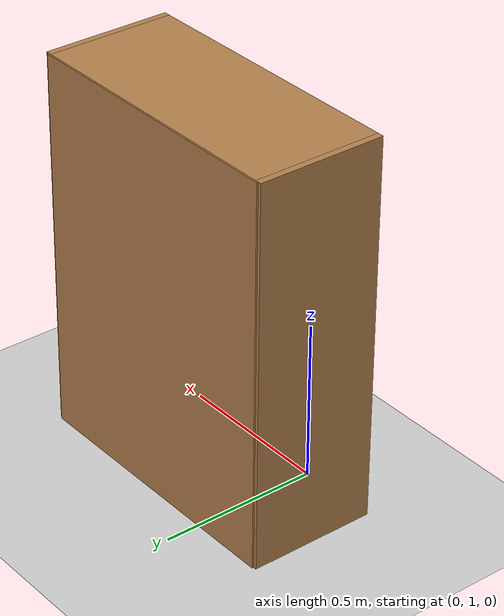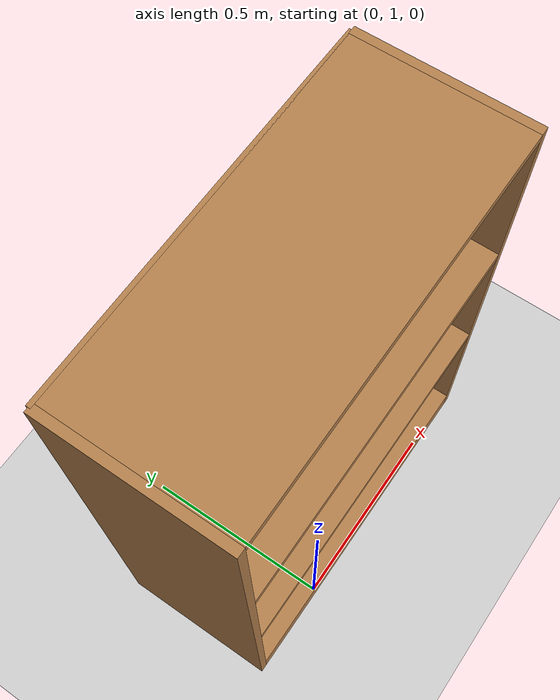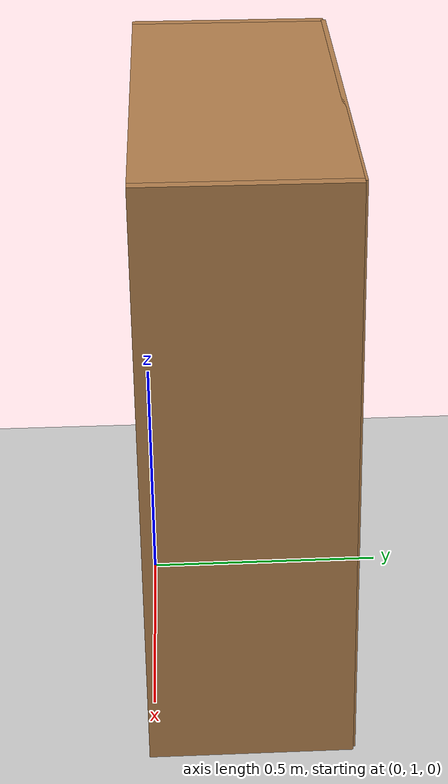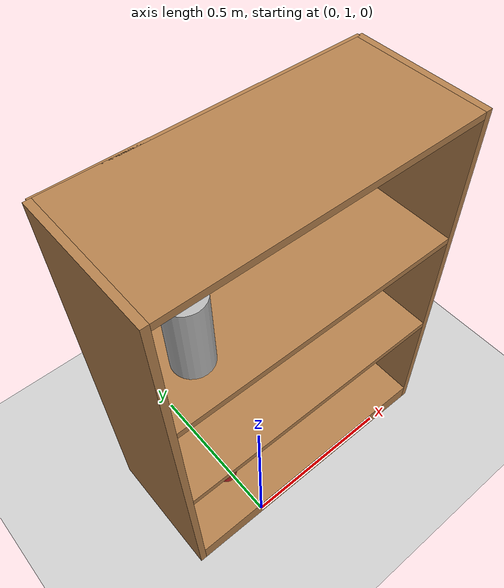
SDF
<sdf version="1.6">
 <world name="default">
  <light name="sun" type="directional">
   <pose>0 0 10 0 -0 0</pose>
   <diffuse>0.8 0.8 0.8 1</diffuse>
   <specular>0.1 0.1 0.1 1</specular>
   <attenuation>
    <range>1000</range>
    <constant>0.9</constant>
    <linear>0.01</linear>
    <quadratic>0.001</quadratic>
   </attenuation>
   <direction>-0.5 0.5 -1</direction>
  </light>
  <model name="ground_plane">
   <static>1</static>
   <link name="link">
    <collision name="collision">
     <geometry><plane><normal>0 0 1</normal><size>100 100</size></plane></geometry>
     <surface><friction><ode><mu>100</mu><mu2>50</mu2></ode></friction></surface>
    </collision>
    <visual name="visual">
     <cast_shadows>0</cast_shadows>
     <geometry><plane><normal>0 0 1</normal><size>100 100</size></plane></geometry>
     <material>
      <script><uri>file://media/materials/scripts/gazebo.material</uri><name>Gazebo/Grey</name></script>
     </material>
    </visual>
   </link>
  </model>
  <gravity>0 0 -9.8</gravity>
  <magnetic_field>6e-06 2.3e-05 -4.2e-05</magnetic_field>
  <atmosphere type="adiabatic"/>
  <physics name="default_physics" default="0" type="ode">
   <max_step_size>0.001</max_step_size>
   <real_time_factor>1</real_time_factor>
   <real_time_update_rate>1000</real_time_update_rate>
  </physics>
  <scene><ambient>0.4 0.4 0.4 1</ambient><background>0.7 0.7 0.7 1</background><shadows>1</shadows></scene>
  <spherical_coordinates>
   <surface_model>EARTH_WGS84</surface_model>
   <latitude_deg>0</latitude_deg>
   <longitude_deg>0</longitude_deg>
   <elevation>0</elevation>
   <heading_deg>0</heading_deg>
  </spherical_coordinates>
  <model name="bookshelf">
   <static>1</static>
   <link name="link">
    <inertial><mass>1</mass></inertial>
    <collision name="back">
     <pose>0 0.005 0.6 0 -0 0</pose>
     <geometry><box><size>0.9 0.01 1.2</size></box></geometry>
    </collision>
    <visual name="visual1">
     <pose>0 0.005 0.6 0 -0 0</pose>
     <geometry><box><size>0.9 0.01 1.2</size></box></geometry>
     <material>
      <script><uri>file://media/materials/scripts/gazebo.material</uri><name>Gazebo/Wood</name></script>
     </material>
    </visual>
    <collision name="left_side">
     <pose>0.45 -0.195 0.6 0 -0 0</pose>
     <geometry><box><size>0.02 0.4 1.2</size></box></geometry>
    </collision>
    <visual name="visual2">
     <pose>0.45 -0.195 0.6 0 -0 0</pose>
     <geometry><box><size>0.02 0.4 1.2</size></box></geometry>
     <material>
      <script><uri>file://media/materials/scripts/gazebo.material</uri><name>Gazebo/Wood</name></script>
     </material>
    </visual>
    <collision name="right_side">
     <pose>-0.45 -0.195 0.6 0 -0 0</pose>
     <geometry><box><size>0.02 0.4 1.2</size></box></geometry>
    </collision>
    <visual name="visual3">
     <pose>-0.45 -0.195 0.6 0 -0 0</pose>
     <geometry><box><size>0.02 0.4 1.2</size></box></geometry>
     <material>
      <script><uri>file://media/materials/scripts/gazebo.material</uri><name>Gazebo/Wood</name></script>
     </material>
    </visual>
    <collision name="bottom">
     <pose>0 -0.195 0.03 0 -0 0</pose>
     <geometry><box><size>0.88 0.4 0.06</size></box></geometry>
    </collision>
    <visual name="visual4">
     <pose>0 -0.195 0.03 0 -0 0</pose>
     <geometry><box><size>0.88 0.4 0.06</size></box></geometry>
     <material>
      <script><uri>file://media/materials/scripts/gazebo.material</uri><name>Gazebo/Wood</name></script>
     </material>
    </visual>
    <collision name="top">
     <pose>0 -0.195 1.19 0 -0 0</pose>
     <geometry><box><size>0.88 0.4 0.02</size></box></geometry>
    </collision>
    <visual name="visual5">
     <pose>0 -0.195 1.19 0 -0 0</pose>
     <geometry><box><size>0.88 0.4 0.02</size></box></geometry>
     <material>
      <script><uri>file://media/materials/scripts/gazebo.material</uri><name>Gazebo/Wood</name></script>
     </material>
    </visual>
    <collision name="low_shelf">
     <pose>0 -0.195 0.43 0 -0 0</pose>
     <geometry><box><size>0.88 0.4 0.02</size></box></geometry>
    </collision>
    <visual name="visual6">
     <pose>0 -0.195 0.43 0 -0 0</pose>
     <geometry><box><size>0.88 0.4 0.02</size></box></geometry>
     <material>
      <script><uri>file://media/materials/scripts/gazebo.material</uri><name>Gazebo/Wood</name></script>
     </material>
    </visual>
    <collision name="high_shelf">
     <pose>0 -0.195 0.8 0 -0 0</pose>
     <geometry><box><size>0.88 0.4 0.02</size></box></geometry>
    </collision>
    <visual name="visual7">
     <pose>0 -0.195 0.8 0 -0 0</pose>
     <geometry><box><size>0.88 0.4 0.02</size></box></geometry>
     <material>
      <script><uri>file://media/materials/scripts/gazebo.material</uri><name>Gazebo/Wood</name></script>
     </material>
    </visual>
   </link>
   <pose>0.210434 1.3852 0 0 -0 0</pose>
  </model>
  <model name="beer">
   <link name="link">
    <pose>0 0 0.115 0 -0 0</pose>
    <inertial>
     <mass>0.39</mass>
     <inertia><ixx>0.00058</ixx><ixy>0</ixy><ixz>0</ixz><iyy>0.00058</iyy><iyz>0</iyz><izz>0.00019</izz></inertia>
    </inertial>
    <collision name="collision">
     <geometry><cylinder><radius>0.055</radius><length>0.23</length></cylinder></geometry>
    </collision>
    <visual name="visual">
     <geometry><cylinder><radius>0.055</radius><length>0.23</length></cylinder></geometry>
     <material>
      <script>
       <uri>model://beer/materials/scripts</uri>
       <uri>model://beer/materials/textures</uri>
       <name>Beer/Diffuse</name>
      </script>
     </material>
    </visual>
   </link>
   <pose>-0.087896 1.12164 0.809999 2.6e-05 5e-06 0.003979</pose>
  </model>
  <model name="cricket_ball">
   <link name="link">
    <pose>0 0 0.0375 0 -0 0</pose>
    <inertial>
     <mass>0.1467</mass>
     <inertia>
      <ixx>8.25187e-05</ixx>
      <ixy>0</ixy>
      <ixz>0</ixz>
      <iyy>8.25187e-05</iyy>
      <iyz>0</iyz>
      <izz>8.25187e-05</izz>
     </inertia>
    </inertial>
    <collision name="collision">
     <geometry><sphere><radius>0.0375</radius></sphere></geometry>
     <surface>
      <contact>
       <poissons_ratio>0.347</poissons_ratio>
       <elastic_modulus>8.8e+09</elastic_modulus>
       <ode><kp>100000</kp><kd>100</kd><max_vel>100</max_vel><min_depth>0.001</min_depth></ode>
      </contact>
      <friction>
       <torsional>
        <coefficient>1</coefficient>
        <use_patch_radius>0</use_patch_radius>
        <surface_radius>0.01</surface_radius>
       </torsional>
      </friction>
     </surface>
    </collision>
    <visual name="visual">
     <geometry><sphere><radius>0.0375</radius></sphere></geometry>
     <material>
      <script><uri>file://media/materials/scripts/gazebo.material</uri><name>Gazebo/Red</name></script>
     </material>
    </visual>
    <velocity_decay><linear>0</linear><angular>0.005</angular></velocity_decay>
   </link>
   <pose>0.552512 1.21548 0.438986 0 -0 0</pose>
  </model>
  <model name="RoboCup SPL Ball">
   <static>0</static>
   <link name="ball">
    <inertial>
     <mass>0.0056</mass>
     <inertia>
      <ixx>2.37e-06</ixx>
      <iyy>2.37e-06</iyy>
      <izz>2.37e-06</izz>
      <ixy>0</ixy>
      <ixz>0</ixz>
      <iyz>0</iyz>
     </inertia>
    </inertial>
    <collision name="collision"><geometry><sphere><radius>0.0325</radius></sphere></geometry></collision>
    <visual name="visual">
     <geometry><sphere><radius>0.0325</radius></sphere></geometry>
     <material>
      <script><uri>file://media/materials/scripts/gazebo.material</uri><name>Gazebo/RedBright</name></script>
     </material>
    </visual>
   </link>
   <pose>-0.029893 1.13613 0.0925 0 -0 0</pose>
  </model>
 </world>
</sdf>
